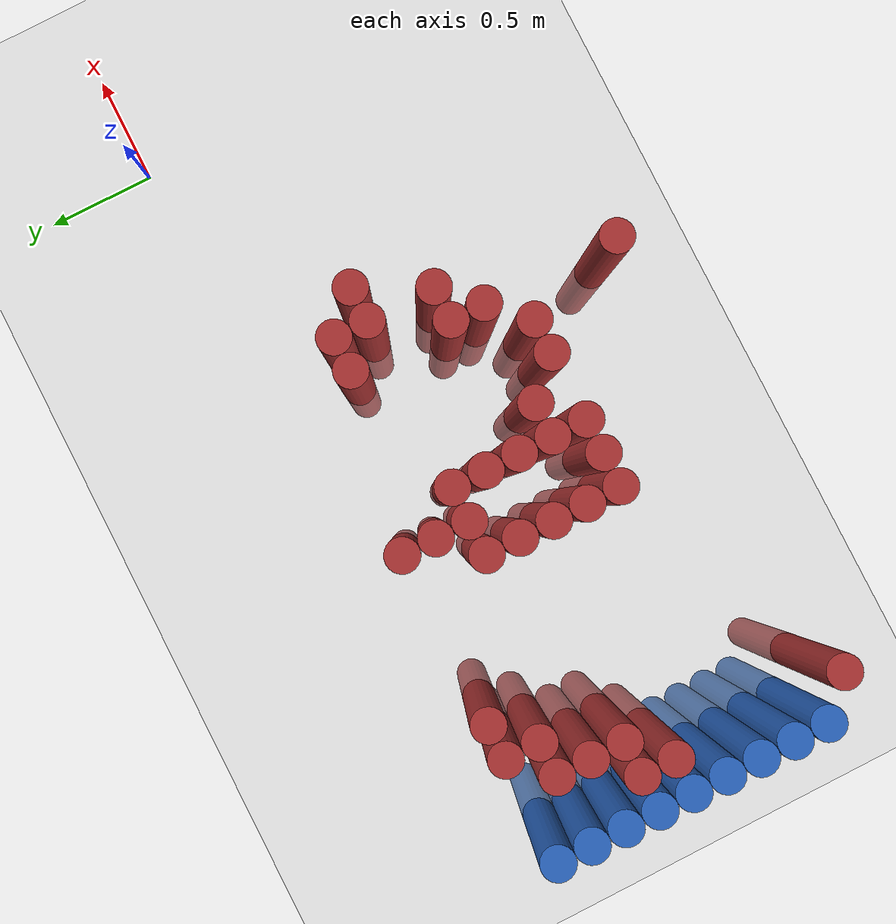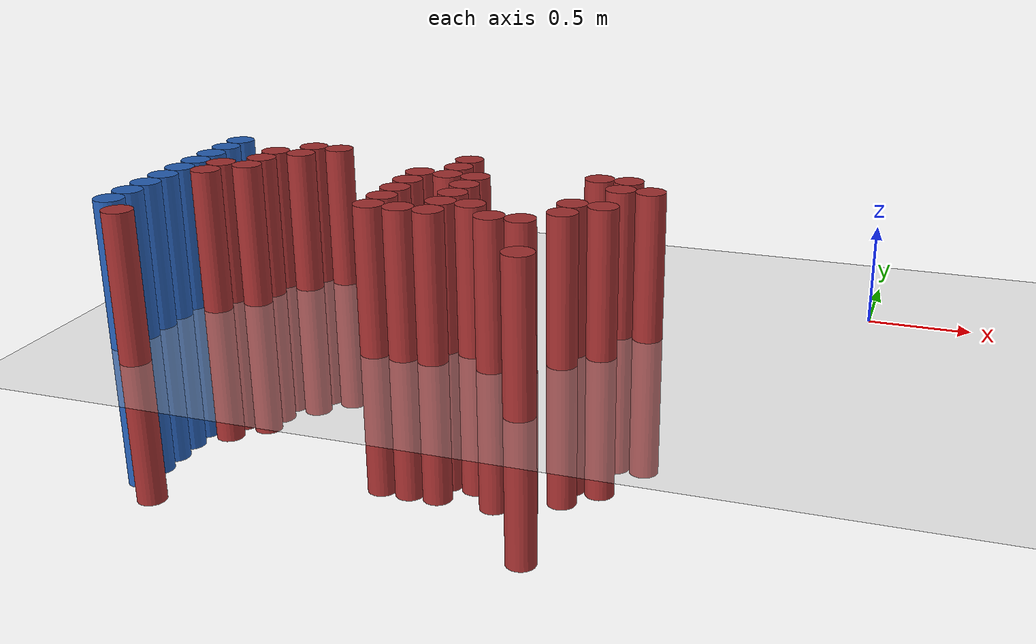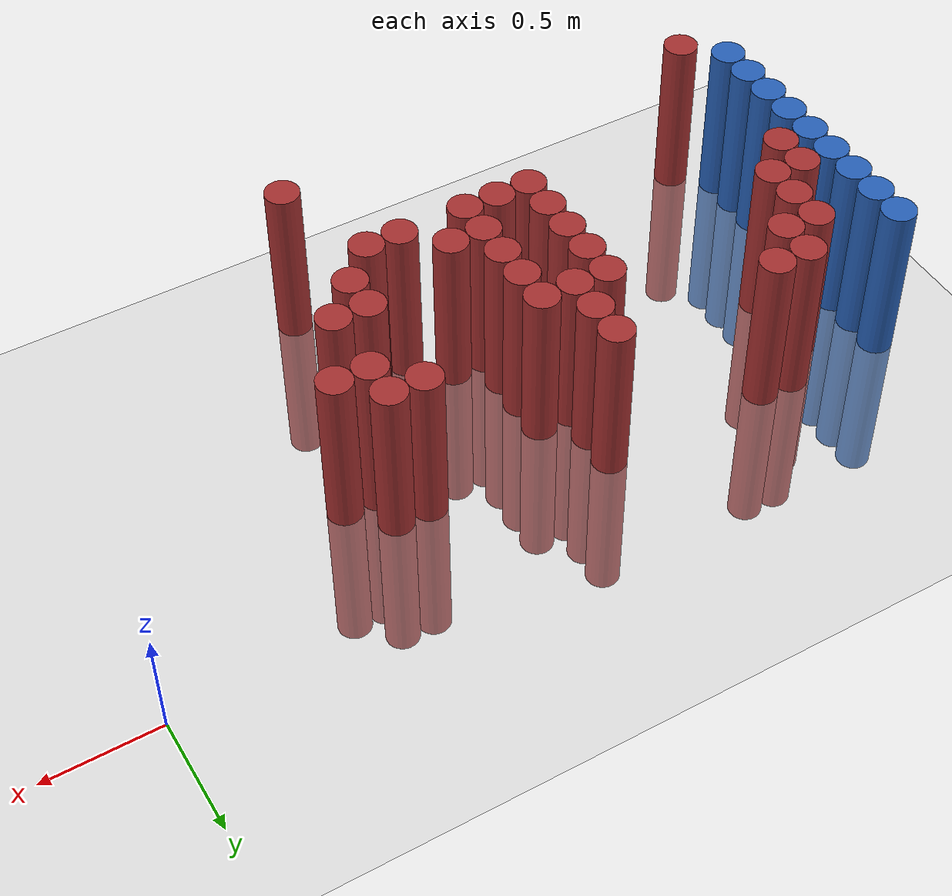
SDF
<sdf version="1.6">
 <world name="default">
  <model name="ground_plane">
   <static>1</static>
   <link name="link">
    <collision name="collision">
     <geometry><plane><normal>0 0 1</normal><size>100 100</size></plane></geometry>
     <surface><friction><ode><mu>100</mu><mu2>50</mu2></ode></friction></surface>
    </collision>
    <visual name="visual">
     <cast_shadows>0</cast_shadows>
     <geometry><plane><normal>0 0 1</normal><size>100 100</size></plane></geometry>
     <material>
      <script><uri>file://media/materials/scripts/gazebo.material</uri><name>Gazebo/Grey</name></script>
     </material>
    </visual>
   </link>
  </model>
  <model name="unit_cylinder_95">
   <static>1</static>
   <pose>-3.425000 -1.475000 0.000000 0.000000 0.000000 0.000000</pose>
   <link name="link">
    <inertial>
     <mass>1</mass>
     <inertia><ixx>0.145833</ixx><ixy>0</ixy><ixz>0</ixz><iyy>0.145833</iyy><iyz>0</iyz><izz>0.125</izz></inertia>
    </inertial>
    <collision name="collision">
     <geometry><cylinder><radius>0.075000</radius><length>1.5</length></cylinder></geometry>
    </collision>
    <visual name="visual">
     <geometry><cylinder><radius>0.075000</radius><length>1.5</length></cylinder></geometry>
     <material>
      <ambient>0.152000 0.379000 0.720000 1</ambient>
      <diffuse>0.152000 0.379000 0.720000 1</diffuse>
     </material>
     <material>
      <script><name>Gazebo/Grey</name><uri>file://media/materials/scripts/gazebo.material</uri></script>
     </material>
    </visual>
   </link>
  </model>
  <model name="unit_cylinder_97">
   <static>1</static>
   <pose>-3.425000 -1.325000 0.000000 0.000000 0.000000 0.000000</pose>
   <link name="link">
    <inertial>
     <mass>1</mass>
     <inertia><ixx>0.145833</ixx><ixy>0</ixy><ixz>0</ixz><iyy>0.145833</iyy><iyz>0</iyz><izz>0.125</izz></inertia>
    </inertial>
    <collision name="collision">
     <geometry><cylinder><radius>0.075000</radius><length>1.5</length></cylinder></geometry>
    </collision>
    <visual name="visual">
     <geometry><cylinder><radius>0.075000</radius><length>1.5</length></cylinder></geometry>
     <material>
      <ambient>0.152000 0.379000 0.720000 1</ambient>
      <diffuse>0.152000 0.379000 0.720000 1</diffuse>
     </material>
     <material>
      <script><name>Gazebo/Grey</name><uri>file://media/materials/scripts/gazebo.material</uri></script>
     </material>
    </visual>
   </link>
  </model>
  <model name="unit_cylinder_99">
   <static>1</static>
   <pose>-3.425000 -1.175000 0.000000 0.000000 0.000000 0.000000</pose>
   <link name="link">
    <inertial>
     <mass>1</mass>
     <inertia><ixx>0.145833</ixx><ixy>0</ixy><ixz>0</ixz><iyy>0.145833</iyy><iyz>0</iyz><izz>0.125</izz></inertia>
    </inertial>
    <collision name="collision">
     <geometry><cylinder><radius>0.075000</radius><length>1.5</length></cylinder></geometry>
    </collision>
    <visual name="visual">
     <geometry><cylinder><radius>0.075000</radius><length>1.5</length></cylinder></geometry>
     <material>
      <ambient>0.152000 0.379000 0.720000 1</ambient>
      <diffuse>0.152000 0.379000 0.720000 1</diffuse>
     </material>
     <material>
      <script><name>Gazebo/Grey</name><uri>file://media/materials/scripts/gazebo.material</uri></script>
     </material>
    </visual>
   </link>
  </model>
  <model name="unit_cylinder_101">
   <static>1</static>
   <pose>-3.425000 -1.025000 0.000000 0.000000 0.000000 0.000000</pose>
   <link name="link">
    <inertial>
     <mass>1</mass>
     <inertia><ixx>0.145833</ixx><ixy>0</ixy><ixz>0</ixz><iyy>0.145833</iyy><iyz>0</iyz><izz>0.125</izz></inertia>
    </inertial>
    <collision name="collision">
     <geometry><cylinder><radius>0.075000</radius><length>1.5</length></cylinder></geometry>
    </collision>
    <visual name="visual">
     <geometry><cylinder><radius>0.075000</radius><length>1.5</length></cylinder></geometry>
     <material>
      <ambient>0.152000 0.379000 0.720000 1</ambient>
      <diffuse>0.152000 0.379000 0.720000 1</diffuse>
     </material>
     <material>
      <script><name>Gazebo/Grey</name><uri>file://media/materials/scripts/gazebo.material</uri></script>
     </material>
    </visual>
   </link>
  </model>
  <model name="unit_cylinder_103">
   <static>1</static>
   <pose>-3.425000 -0.875000 0.000000 0.000000 0.000000 0.000000</pose>
   <link name="link">
    <inertial>
     <mass>1</mass>
     <inertia><ixx>0.145833</ixx><ixy>0</ixy><ixz>0</ixz><iyy>0.145833</iyy><iyz>0</iyz><izz>0.125</izz></inertia>
    </inertial>
    <collision name="collision">
     <geometry><cylinder><radius>0.075000</radius><length>1.5</length></cylinder></geometry>
    </collision>
    <visual name="visual">
     <geometry><cylinder><radius>0.075000</radius><length>1.5</length></cylinder></geometry>
     <material>
      <ambient>0.152000 0.379000 0.720000 1</ambient>
      <diffuse>0.152000 0.379000 0.720000 1</diffuse>
     </material>
     <material>
      <script><name>Gazebo/Grey</name><uri>file://media/materials/scripts/gazebo.material</uri></script>
     </material>
    </visual>
   </link>
  </model>
  <model name="unit_cylinder_105">
   <static>1</static>
   <pose>-3.425000 -0.725000 0.000000 0.000000 0.000000 0.000000</pose>
   <link name="link">
    <inertial>
     <mass>1</mass>
     <inertia><ixx>0.145833</ixx><ixy>0</ixy><ixz>0</ixz><iyy>0.145833</iyy><iyz>0</iyz><izz>0.125</izz></inertia>
    </inertial>
    <collision name="collision">
     <geometry><cylinder><radius>0.075000</radius><length>1.5</length></cylinder></geometry>
    </collision>
    <visual name="visual">
     <geometry><cylinder><radius>0.075000</radius><length>1.5</length></cylinder></geometry>
     <material>
      <ambient>0.152000 0.379000 0.720000 1</ambient>
      <diffuse>0.152000 0.379000 0.720000 1</diffuse>
     </material>
     <material>
      <script><name>Gazebo/Grey</name><uri>file://media/materials/scripts/gazebo.material</uri></script>
     </material>
    </visual>
   </link>
  </model>
  <model name="unit_cylinder_107">
   <static>1</static>
   <pose>-3.425000 -0.575000 0.000000 0.000000 0.000000 0.000000</pose>
   <link name="link">
    <inertial>
     <mass>1</mass>
     <inertia><ixx>0.145833</ixx><ixy>0</ixy><ixz>0</ixz><iyy>0.145833</iyy><iyz>0</iyz><izz>0.125</izz></inertia>
    </inertial>
    <collision name="collision">
     <geometry><cylinder><radius>0.075000</radius><length>1.5</length></cylinder></geometry>
    </collision>
    <visual name="visual">
     <geometry><cylinder><radius>0.075000</radius><length>1.5</length></cylinder></geometry>
     <material>
      <ambient>0.152000 0.379000 0.720000 1</ambient>
      <diffuse>0.152000 0.379000 0.720000 1</diffuse>
     </material>
     <material>
      <script><name>Gazebo/Grey</name><uri>file://media/materials/scripts/gazebo.material</uri></script>
     </material>
    </visual>
   </link>
  </model>
  <model name="unit_cylinder_109">
   <static>1</static>
   <pose>-3.425000 -0.425000 0.000000 0.000000 0.000000 0.000000</pose>
   <link name="link">
    <inertial>
     <mass>1</mass>
     <inertia><ixx>0.145833</ixx><ixy>0</ixy><ixz>0</ixz><iyy>0.145833</iyy><iyz>0</iyz><izz>0.125</izz></inertia>
    </inertial>
    <collision name="collision">
     <geometry><cylinder><radius>0.075000</radius><length>1.5</length></cylinder></geometry>
    </collision>
    <visual name="visual">
     <geometry><cylinder><radius>0.075000</radius><length>1.5</length></cylinder></geometry>
     <material>
      <ambient>0.152000 0.379000 0.720000 1</ambient>
      <diffuse>0.152000 0.379000 0.720000 1</diffuse>
     </material>
     <material>
      <script><name>Gazebo/Grey</name><uri>file://media/materials/scripts/gazebo.material</uri></script>
     </material>
    </visual>
   </link>
  </model>
  <model name="unit_cylinder_111">
   <static>1</static>
   <pose>-3.425000 -0.275000 0.000000 0.000000 0.000000 0.000000</pose>
   <link name="link">
    <inertial>
     <mass>1</mass>
     <inertia><ixx>0.145833</ixx><ixy>0</ixy><ixz>0</ixz><iyy>0.145833</iyy><iyz>0</iyz><izz>0.125</izz></inertia>
    </inertial>
    <collision name="collision">
     <geometry><cylinder><radius>0.075000</radius><length>1.5</length></cylinder></geometry>
    </collision>
    <visual name="visual">
     <geometry><cylinder><radius>0.075000</radius><length>1.5</length></cylinder></geometry>
     <material>
      <ambient>0.152000 0.379000 0.720000 1</ambient>
      <diffuse>0.152000 0.379000 0.720000 1</diffuse>
     </material>
     <material>
      <script><name>Gazebo/Grey</name><uri>file://media/materials/scripts/gazebo.material</uri></script>
     </material>
    </visual>
   </link>
  </model>
  <model name="unit_cylinder_211">
   <static>1</static>
   <pose>-3.425000 -1.475000 0.000000 0.000000 0.000000 0.000000</pose>
   <link name="link">
    <inertial>
     <mass>1</mass>
     <inertia><ixx>0.145833</ixx><ixy>0</ixy><ixz>0</ixz><iyy>0.145833</iyy><iyz>0</iyz><izz>0.125</izz></inertia>
    </inertial>
    <collision name="collision">
     <geometry><cylinder><radius>0.075000</radius><length>1.5</length></cylinder></geometry>
    </collision>
    <visual name="visual">
     <geometry><cylinder><radius>0.075000</radius><length>1.5</length></cylinder></geometry>
     <material>
      <ambient>0.152000 0.379000 0.720000 1</ambient>
      <diffuse>0.152000 0.379000 0.720000 1</diffuse>
     </material>
     <material>
      <script><name>Gazebo/Grey</name><uri>file://media/materials/scripts/gazebo.material</uri></script>
     </material>
    </visual>
   </link>
  </model>
  <model name="unit_cylinder_212">
   <static>1</static>
   <pose>-3.425000 -1.325000 0.000000 0.000000 0.000000 0.000000</pose>
   <link name="link">
    <inertial>
     <mass>1</mass>
     <inertia><ixx>0.145833</ixx><ixy>0</ixy><ixz>0</ixz><iyy>0.145833</iyy><iyz>0</iyz><izz>0.125</izz></inertia>
    </inertial>
    <collision name="collision">
     <geometry><cylinder><radius>0.075000</radius><length>1.5</length></cylinder></geometry>
    </collision>
    <visual name="visual">
     <geometry><cylinder><radius>0.075000</radius><length>1.5</length></cylinder></geometry>
     <material>
      <ambient>0.152000 0.379000 0.720000 1</ambient>
      <diffuse>0.152000 0.379000 0.720000 1</diffuse>
     </material>
     <material>
      <script><name>Gazebo/Grey</name><uri>file://media/materials/scripts/gazebo.material</uri></script>
     </material>
    </visual>
   </link>
  </model>
  <model name="unit_cylinder_213">
   <static>1</static>
   <pose>-3.425000 -1.175000 0.000000 0.000000 0.000000 0.000000</pose>
   <link name="link">
    <inertial>
     <mass>1</mass>
     <inertia><ixx>0.145833</ixx><ixy>0</ixy><ixz>0</ixz><iyy>0.145833</iyy><iyz>0</iyz><izz>0.125</izz></inertia>
    </inertial>
    <collision name="collision">
     <geometry><cylinder><radius>0.075000</radius><length>1.5</length></cylinder></geometry>
    </collision>
    <visual name="visual">
     <geometry><cylinder><radius>0.075000</radius><length>1.5</length></cylinder></geometry>
     <material>
      <ambient>0.152000 0.379000 0.720000 1</ambient>
      <diffuse>0.152000 0.379000 0.720000 1</diffuse>
     </material>
     <material>
      <script><name>Gazebo/Grey</name><uri>file://media/materials/scripts/gazebo.material</uri></script>
     </material>
    </visual>
   </link>
  </model>
  <model name="unit_cylinder_214">
   <static>1</static>
   <pose>-3.425000 -1.025000 0.000000 0.000000 0.000000 0.000000</pose>
   <link name="link">
    <inertial>
     <mass>1</mass>
     <inertia><ixx>0.145833</ixx><ixy>0</ixy><ixz>0</ixz><iyy>0.145833</iyy><iyz>0</iyz><izz>0.125</izz></inertia>
    </inertial>
    <collision name="collision">
     <geometry><cylinder><radius>0.075000</radius><length>1.5</length></cylinder></geometry>
    </collision>
    <visual name="visual">
     <geometry><cylinder><radius>0.075000</radius><length>1.5</length></cylinder></geometry>
     <material>
      <ambient>0.152000 0.379000 0.720000 1</ambient>
      <diffuse>0.152000 0.379000 0.720000 1</diffuse>
     </material>
     <material>
      <script><name>Gazebo/Grey</name><uri>file://media/materials/scripts/gazebo.material</uri></script>
     </material>
    </visual>
   </link>
  </model>
  <model name="unit_cylinder_215">
   <static>1</static>
   <pose>-3.425000 -0.875000 0.000000 0.000000 0.000000 0.000000</pose>
   <link name="link">
    <inertial>
     <mass>1</mass>
     <inertia><ixx>0.145833</ixx><ixy>0</ixy><ixz>0</ixz><iyy>0.145833</iyy><iyz>0</iyz><izz>0.125</izz></inertia>
    </inertial>
    <collision name="collision">
     <geometry><cylinder><radius>0.075000</radius><length>1.5</length></cylinder></geometry>
    </collision>
    <visual name="visual">
     <geometry><cylinder><radius>0.075000</radius><length>1.5</length></cylinder></geometry>
     <material>
      <ambient>0.152000 0.379000 0.720000 1</ambient>
      <diffuse>0.152000 0.379000 0.720000 1</diffuse>
     </material>
     <material>
      <script><name>Gazebo/Grey</name><uri>file://media/materials/scripts/gazebo.material</uri></script>
     </material>
    </visual>
   </link>
  </model>
  <model name="unit_cylinder_216">
   <static>1</static>
   <pose>-3.425000 -0.725000 0.000000 0.000000 0.000000 0.000000</pose>
   <link name="link">
    <inertial>
     <mass>1</mass>
     <inertia><ixx>0.145833</ixx><ixy>0</ixy><ixz>0</ixz><iyy>0.145833</iyy><iyz>0</iyz><izz>0.125</izz></inertia>
    </inertial>
    <collision name="collision">
     <geometry><cylinder><radius>0.075000</radius><length>1.5</length></cylinder></geometry>
    </collision>
    <visual name="visual">
     <geometry><cylinder><radius>0.075000</radius><length>1.5</length></cylinder></geometry>
     <material>
      <ambient>0.152000 0.379000 0.720000 1</ambient>
      <diffuse>0.152000 0.379000 0.720000 1</diffuse>
     </material>
     <material>
      <script><name>Gazebo/Grey</name><uri>file://media/materials/scripts/gazebo.material</uri></script>
     </material>
    </visual>
   </link>
  </model>
  <model name="unit_cylinder_217">
   <static>1</static>
   <pose>-3.425000 -0.575000 0.000000 0.000000 0.000000 0.000000</pose>
   <link name="link">
    <inertial>
     <mass>1</mass>
     <inertia><ixx>0.145833</ixx><ixy>0</ixy><ixz>0</ixz><iyy>0.145833</iyy><iyz>0</iyz><izz>0.125</izz></inertia>
    </inertial>
    <collision name="collision">
     <geometry><cylinder><radius>0.075000</radius><length>1.5</length></cylinder></geometry>
    </collision>
    <visual name="visual">
     <geometry><cylinder><radius>0.075000</radius><length>1.5</length></cylinder></geometry>
     <material>
      <ambient>0.152000 0.379000 0.720000 1</ambient>
      <diffuse>0.152000 0.379000 0.720000 1</diffuse>
     </material>
     <material>
      <script><name>Gazebo/Grey</name><uri>file://media/materials/scripts/gazebo.material</uri></script>
     </material>
    </visual>
   </link>
  </model>
  <model name="unit_cylinder_218">
   <static>1</static>
   <pose>-3.425000 -0.425000 0.000000 0.000000 0.000000 0.000000</pose>
   <link name="link">
    <inertial>
     <mass>1</mass>
     <inertia><ixx>0.145833</ixx><ixy>0</ixy><ixz>0</ixz><iyy>0.145833</iyy><iyz>0</iyz><izz>0.125</izz></inertia>
    </inertial>
    <collision name="collision">
     <geometry><cylinder><radius>0.075000</radius><length>1.5</length></cylinder></geometry>
    </collision>
    <visual name="visual">
     <geometry><cylinder><radius>0.075000</radius><length>1.5</length></cylinder></geometry>
     <material>
      <ambient>0.152000 0.379000 0.720000 1</ambient>
      <diffuse>0.152000 0.379000 0.720000 1</diffuse>
     </material>
     <material>
      <script><name>Gazebo/Grey</name><uri>file://media/materials/scripts/gazebo.material</uri></script>
     </material>
    </visual>
   </link>
  </model>
  <model name="unit_cylinder_219">
   <static>1</static>
   <pose>-3.425000 -0.275000 0.000000 0.000000 0.000000 0.000000</pose>
   <link name="link">
    <inertial>
     <mass>1</mass>
     <inertia><ixx>0.145833</ixx><ixy>0</ixy><ixz>0</ixz><iyy>0.145833</iyy><iyz>0</iyz><izz>0.125</izz></inertia>
    </inertial>
    <collision name="collision">
     <geometry><cylinder><radius>0.075000</radius><length>1.5</length></cylinder></geometry>
    </collision>
    <visual name="visual">
     <geometry><cylinder><radius>0.075000</radius><length>1.5</length></cylinder></geometry>
     <material>
      <ambient>0.152000 0.379000 0.720000 1</ambient>
      <diffuse>0.152000 0.379000 0.720000 1</diffuse>
     </material>
     <material>
      <script><name>Gazebo/Grey</name><uri>file://media/materials/scripts/gazebo.material</uri></script>
     </material>
    </visual>
   </link>
  </model>
  <model name="unit_cylinder_259">
   <static>1</static>
   <pose>-3.275000 -1.625000 0.000000 0.000000 0.000000 0.000000</pose>
   <link name="link">
    <inertial>
     <mass>1</mass>
     <inertia><ixx>0.145833</ixx><ixy>0</ixy><ixz>0</ixz><iyy>0.145833</iyy><iyz>0</iyz><izz>0.125</izz></inertia>
    </inertial>
    <collision name="collision">
     <geometry><cylinder><radius>0.075000</radius><length>1.5</length></cylinder></geometry>
    </collision>
    <visual name="visual">
     <geometry><cylinder><radius>0.075000</radius><length>1.5</length></cylinder></geometry>
     <material>
      <ambient>0.648000 0.192000 0.192000 1</ambient>
      <diffuse>0.648000 0.192000 0.192000 1</diffuse>
     </material>
     <material>
      <script><name>Gazebo/Grey</name><uri>file://media/materials/scripts/gazebo.material</uri></script>
     </material>
    </visual>
   </link>
  </model>
  <model name="unit_cylinder_260">
   <static>1</static>
   <pose>-3.275000 -0.875000 0.000000 0.000000 0.000000 0.000000</pose>
   <link name="link">
    <inertial>
     <mass>1</mass>
     <inertia><ixx>0.145833</ixx><ixy>0</ixy><ixz>0</ixz><iyy>0.145833</iyy><iyz>0</iyz><izz>0.125</izz></inertia>
    </inertial>
    <collision name="collision">
     <geometry><cylinder><radius>0.075000</radius><length>1.5</length></cylinder></geometry>
    </collision>
    <visual name="visual">
     <geometry><cylinder><radius>0.075000</radius><length>1.5</length></cylinder></geometry>
     <material>
      <ambient>0.648000 0.192000 0.192000 1</ambient>
      <diffuse>0.648000 0.192000 0.192000 1</diffuse>
     </material>
     <material>
      <script><name>Gazebo/Grey</name><uri>file://media/materials/scripts/gazebo.material</uri></script>
     </material>
    </visual>
   </link>
  </model>
  <model name="unit_cylinder_261">
   <static>1</static>
   <pose>-3.275000 -0.725000 0.000000 0.000000 0.000000 0.000000</pose>
   <link name="link">
    <inertial>
     <mass>1</mass>
     <inertia><ixx>0.145833</ixx><ixy>0</ixy><ixz>0</ixz><iyy>0.145833</iyy><iyz>0</iyz><izz>0.125</izz></inertia>
    </inertial>
    <collision name="collision">
     <geometry><cylinder><radius>0.075000</radius><length>1.5</length></cylinder></geometry>
    </collision>
    <visual name="visual">
     <geometry><cylinder><radius>0.075000</radius><length>1.5</length></cylinder></geometry>
     <material>
      <ambient>0.648000 0.192000 0.192000 1</ambient>
      <diffuse>0.648000 0.192000 0.192000 1</diffuse>
     </material>
     <material>
      <script><name>Gazebo/Grey</name><uri>file://media/materials/scripts/gazebo.material</uri></script>
     </material>
    </visual>
   </link>
  </model>
  <model name="unit_cylinder_281">
   <static>1</static>
   <pose>-3.125000 -0.725000 0.000000 0.000000 0.000000 0.000000</pose>
   <link name="link">
    <inertial>
     <mass>1</mass>
     <inertia><ixx>0.145833</ixx><ixy>0</ixy><ixz>0</ixz><iyy>0.145833</iyy><iyz>0</iyz><izz>0.125</izz></inertia>
    </inertial>
    <collision name="collision">
     <geometry><cylinder><radius>0.075000</radius><length>1.5</length></cylinder></geometry>
    </collision>
    <visual name="visual">
     <geometry><cylinder><radius>0.075000</radius><length>1.5</length></cylinder></geometry>
     <material>
      <ambient>0.648000 0.192000 0.192000 1</ambient>
      <diffuse>0.648000 0.192000 0.192000 1</diffuse>
     </material>
     <material>
      <script><name>Gazebo/Grey</name><uri>file://media/materials/scripts/gazebo.material</uri></script>
     </material>
    </visual>
   </link>
  </model>
  <model name="unit_cylinder_282">
   <static>1</static>
   <pose>-3.125000 -0.575000 0.000000 0.000000 0.000000 0.000000</pose>
   <link name="link">
    <inertial>
     <mass>1</mass>
     <inertia><ixx>0.145833</ixx><ixy>0</ixy><ixz>0</ixz><iyy>0.145833</iyy><iyz>0</iyz><izz>0.125</izz></inertia>
    </inertial>
    <collision name="collision">
     <geometry><cylinder><radius>0.075000</radius><length>1.5</length></cylinder></geometry>
    </collision>
    <visual name="visual">
     <geometry><cylinder><radius>0.075000</radius><length>1.5</length></cylinder></geometry>
     <material>
      <ambient>0.648000 0.192000 0.192000 1</ambient>
      <diffuse>0.648000 0.192000 0.192000 1</diffuse>
     </material>
     <material>
      <script><name>Gazebo/Grey</name><uri>file://media/materials/scripts/gazebo.material</uri></script>
     </material>
    </visual>
   </link>
  </model>
  <model name="unit_cylinder_283">
   <static>1</static>
   <pose>-3.125000 -0.425000 0.000000 0.000000 0.000000 0.000000</pose>
   <link name="link">
    <inertial>
     <mass>1</mass>
     <inertia><ixx>0.145833</ixx><ixy>0</ixy><ixz>0</ixz><iyy>0.145833</iyy><iyz>0</iyz><izz>0.125</izz></inertia>
    </inertial>
    <collision name="collision">
     <geometry><cylinder><radius>0.075000</radius><length>1.5</length></cylinder></geometry>
    </collision>
    <visual name="visual">
     <geometry><cylinder><radius>0.075000</radius><length>1.5</length></cylinder></geometry>
     <material>
      <ambient>0.648000 0.192000 0.192000 1</ambient>
      <diffuse>0.648000 0.192000 0.192000 1</diffuse>
     </material>
     <material>
      <script><name>Gazebo/Grey</name><uri>file://media/materials/scripts/gazebo.material</uri></script>
     </material>
    </visual>
   </link>
  </model>
  <model name="unit_cylinder_293">
   <static>1</static>
   <pose>-2.975000 -0.425000 0.000000 0.000000 0.000000 0.000000</pose>
   <link name="link">
    <inertial>
     <mass>1</mass>
     <inertia><ixx>0.145833</ixx><ixy>0</ixy><ixz>0</ixz><iyy>0.145833</iyy><iyz>0</iyz><izz>0.125</izz></inertia>
    </inertial>
    <collision name="collision">
     <geometry><cylinder><radius>0.075000</radius><length>1.5</length></cylinder></geometry>
    </collision>
    <visual name="visual">
     <geometry><cylinder><radius>0.075000</radius><length>1.5</length></cylinder></geometry>
     <material>
      <ambient>0.648000 0.192000 0.192000 1</ambient>
      <diffuse>0.648000 0.192000 0.192000 1</diffuse>
     </material>
     <material>
      <script><name>Gazebo/Grey</name><uri>file://media/materials/scripts/gazebo.material</uri></script>
     </material>
    </visual>
   </link>
  </model>
  <model name="unit_cylinder_294">
   <static>1</static>
   <pose>-2.975000 -0.275000 0.000000 0.000000 0.000000 0.000000</pose>
   <link name="link">
    <inertial>
     <mass>1</mass>
     <inertia><ixx>0.145833</ixx><ixy>0</ixy><ixz>0</ixz><iyy>0.145833</iyy><iyz>0</iyz><izz>0.125</izz></inertia>
    </inertial>
    <collision name="collision">
     <geometry><cylinder><radius>0.075000</radius><length>1.5</length></cylinder></geometry>
    </collision>
    <visual name="visual">
     <geometry><cylinder><radius>0.075000</radius><length>1.5</length></cylinder></geometry>
     <material>
      <ambient>0.648000 0.192000 0.192000 1</ambient>
      <diffuse>0.648000 0.192000 0.192000 1</diffuse>
     </material>
     <material>
      <script><name>Gazebo/Grey</name><uri>file://media/materials/scripts/gazebo.material</uri></script>
     </material>
    </visual>
   </link>
  </model>
  <model name="unit_cylinder_304">
   <static>1</static>
   <pose>-2.825000 -0.275000 0.000000 0.000000 0.000000 0.000000</pose>
   <link name="link">
    <inertial>
     <mass>1</mass>
     <inertia><ixx>0.145833</ixx><ixy>0</ixy><ixz>0</ixz><iyy>0.145833</iyy><iyz>0</iyz><izz>0.125</izz></inertia>
    </inertial>
    <collision name="collision">
     <geometry><cylinder><radius>0.075000</radius><length>1.5</length></cylinder></geometry>
    </collision>
    <visual name="visual">
     <geometry><cylinder><radius>0.075000</radius><length>1.5</length></cylinder></geometry>
     <material>
      <ambient>0.648000 0.192000 0.192000 1</ambient>
      <diffuse>0.648000 0.192000 0.192000 1</diffuse>
     </material>
     <material>
      <script><name>Gazebo/Grey</name><uri>file://media/materials/scripts/gazebo.material</uri></script>
     </material>
    </visual>
   </link>
  </model>
  <model name="unit_cylinder_315">
   <static>1</static>
   <pose>-2.225000 -1.175000 0.000000 0.000000 0.000000 0.000000</pose>
   <link name="link">
    <inertial>
     <mass>1</mass>
     <inertia><ixx>0.145833</ixx><ixy>0</ixy><ixz>0</ixz><iyy>0.145833</iyy><iyz>0</iyz><izz>0.125</izz></inertia>
    </inertial>
    <collision name="collision">
     <geometry><cylinder><radius>0.075000</radius><length>1.5</length></cylinder></geometry>
    </collision>
    <visual name="visual">
     <geometry><cylinder><radius>0.075000</radius><length>1.5</length></cylinder></geometry>
     <material>
      <ambient>0.648000 0.192000 0.192000 1</ambient>
      <diffuse>0.648000 0.192000 0.192000 1</diffuse>
     </material>
     <material>
      <script><name>Gazebo/Grey</name><uri>file://media/materials/scripts/gazebo.material</uri></script>
     </material>
    </visual>
   </link>
  </model>
  <model name="unit_cylinder_316">
   <static>1</static>
   <pose>-2.225000 -1.025000 0.000000 0.000000 0.000000 0.000000</pose>
   <link name="link">
    <inertial>
     <mass>1</mass>
     <inertia><ixx>0.145833</ixx><ixy>0</ixy><ixz>0</ixz><iyy>0.145833</iyy><iyz>0</iyz><izz>0.125</izz></inertia>
    </inertial>
    <collision name="collision">
     <geometry><cylinder><radius>0.075000</radius><length>1.5</length></cylinder></geometry>
    </collision>
    <visual name="visual">
     <geometry><cylinder><radius>0.075000</radius><length>1.5</length></cylinder></geometry>
     <material>
      <ambient>0.648000 0.192000 0.192000 1</ambient>
      <diffuse>0.648000 0.192000 0.192000 1</diffuse>
     </material>
     <material>
      <script><name>Gazebo/Grey</name><uri>file://media/materials/scripts/gazebo.material</uri></script>
     </material>
    </visual>
   </link>
  </model>
  <model name="unit_cylinder_317">
   <static>1</static>
   <pose>-2.225000 -0.875000 0.000000 0.000000 0.000000 0.000000</pose>
   <link name="link">
    <inertial>
     <mass>1</mass>
     <inertia><ixx>0.145833</ixx><ixy>0</ixy><ixz>0</ixz><iyy>0.145833</iyy><iyz>0</iyz><izz>0.125</izz></inertia>
    </inertial>
    <collision name="collision">
     <geometry><cylinder><radius>0.075000</radius><length>1.5</length></cylinder></geometry>
    </collision>
    <visual name="visual">
     <geometry><cylinder><radius>0.075000</radius><length>1.5</length></cylinder></geometry>
     <material>
      <ambient>0.648000 0.192000 0.192000 1</ambient>
      <diffuse>0.648000 0.192000 0.192000 1</diffuse>
     </material>
     <material>
      <script><name>Gazebo/Grey</name><uri>file://media/materials/scripts/gazebo.material</uri></script>
     </material>
    </visual>
   </link>
  </model>
  <model name="unit_cylinder_318">
   <static>1</static>
   <pose>-2.225000 -0.725000 0.000000 0.000000 0.000000 0.000000</pose>
   <link name="link">
    <inertial>
     <mass>1</mass>
     <inertia><ixx>0.145833</ixx><ixy>0</ixy><ixz>0</ixz><iyy>0.145833</iyy><iyz>0</iyz><izz>0.125</izz></inertia>
    </inertial>
    <collision name="collision">
     <geometry><cylinder><radius>0.075000</radius><length>1.5</length></cylinder></geometry>
    </collision>
    <visual name="visual">
     <geometry><cylinder><radius>0.075000</radius><length>1.5</length></cylinder></geometry>
     <material>
      <ambient>0.648000 0.192000 0.192000 1</ambient>
      <diffuse>0.648000 0.192000 0.192000 1</diffuse>
     </material>
     <material>
      <script><name>Gazebo/Grey</name><uri>file://media/materials/scripts/gazebo.material</uri></script>
     </material>
    </visual>
   </link>
  </model>
  <model name="unit_cylinder_319">
   <static>1</static>
   <pose>-2.225000 -0.575000 0.000000 0.000000 0.000000 0.000000</pose>
   <link name="link">
    <inertial>
     <mass>1</mass>
     <inertia><ixx>0.145833</ixx><ixy>0</ixy><ixz>0</ixz><iyy>0.145833</iyy><iyz>0</iyz><izz>0.125</izz></inertia>
    </inertial>
    <collision name="collision">
     <geometry><cylinder><radius>0.075000</radius><length>1.5</length></cylinder></geometry>
    </collision>
    <visual name="visual">
     <geometry><cylinder><radius>0.075000</radius><length>1.5</length></cylinder></geometry>
     <material>
      <ambient>0.648000 0.192000 0.192000 1</ambient>
      <diffuse>0.648000 0.192000 0.192000 1</diffuse>
     </material>
     <material>
      <script><name>Gazebo/Grey</name><uri>file://media/materials/scripts/gazebo.material</uri></script>
     </material>
    </visual>
   </link>
  </model>
  <model name="unit_cylinder_329">
   <static>1</static>
   <pose>-2.075000 -1.175000 0.000000 0.000000 0.000000 0.000000</pose>
   <link name="link">
    <inertial>
     <mass>1</mass>
     <inertia><ixx>0.145833</ixx><ixy>0</ixy><ixz>0</ixz><iyy>0.145833</iyy><iyz>0</iyz><izz>0.125</izz></inertia>
    </inertial>
    <collision name="collision">
     <geometry><cylinder><radius>0.075000</radius><length>1.5</length></cylinder></geometry>
    </collision>
    <visual name="visual">
     <geometry><cylinder><radius>0.075000</radius><length>1.5</length></cylinder></geometry>
     <material>
      <ambient>0.648000 0.192000 0.192000 1</ambient>
      <diffuse>0.648000 0.192000 0.192000 1</diffuse>
     </material>
     <material>
      <script><name>Gazebo/Grey</name><uri>file://media/materials/scripts/gazebo.material</uri></script>
     </material>
    </visual>
   </link>
  </model>
  <model name="unit_cylinder_330">
   <static>1</static>
   <pose>-2.075000 -0.575000 0.000000 0.000000 0.000000 0.000000</pose>
   <link name="link">
    <inertial>
     <mass>1</mass>
     <inertia><ixx>0.145833</ixx><ixy>0</ixy><ixz>0</ixz><iyy>0.145833</iyy><iyz>0</iyz><izz>0.125</izz></inertia>
    </inertial>
    <collision name="collision">
     <geometry><cylinder><radius>0.075000</radius><length>1.5</length></cylinder></geometry>
    </collision>
    <visual name="visual">
     <geometry><cylinder><radius>0.075000</radius><length>1.5</length></cylinder></geometry>
     <material>
      <ambient>0.648000 0.192000 0.192000 1</ambient>
      <diffuse>0.648000 0.192000 0.192000 1</diffuse>
     </material>
     <material>
      <script><name>Gazebo/Grey</name><uri>file://media/materials/scripts/gazebo.material</uri></script>
     </material>
    </visual>
   </link>
  </model>
  <model name="unit_cylinder_331">
   <static>1</static>
   <pose>-2.075000 -0.425000 0.000000 0.000000 0.000000 0.000000</pose>
   <link name="link">
    <inertial>
     <mass>1</mass>
     <inertia><ixx>0.145833</ixx><ixy>0</ixy><ixz>0</ixz><iyy>0.145833</iyy><iyz>0</iyz><izz>0.125</izz></inertia>
    </inertial>
    <collision name="collision">
     <geometry><cylinder><radius>0.075000</radius><length>1.5</length></cylinder></geometry>
    </collision>
    <visual name="visual">
     <geometry><cylinder><radius>0.075000</radius><length>1.5</length></cylinder></geometry>
     <material>
      <ambient>0.648000 0.192000 0.192000 1</ambient>
      <diffuse>0.648000 0.192000 0.192000 1</diffuse>
     </material>
     <material>
      <script><name>Gazebo/Grey</name><uri>file://media/materials/scripts/gazebo.material</uri></script>
     </material>
    </visual>
   </link>
  </model>
  <model name="unit_cylinder_332">
   <static>1</static>
   <pose>-2.075000 -0.275000 0.000000 0.000000 0.000000 0.000000</pose>
   <link name="link">
    <inertial>
     <mass>1</mass>
     <inertia><ixx>0.145833</ixx><ixy>0</ixy><ixz>0</ixz><iyy>0.145833</iyy><iyz>0</iyz><izz>0.125</izz></inertia>
    </inertial>
    <collision name="collision">
     <geometry><cylinder><radius>0.075000</radius><length>1.5</length></cylinder></geometry>
    </collision>
    <visual name="visual">
     <geometry><cylinder><radius>0.075000</radius><length>1.5</length></cylinder></geometry>
     <material>
      <ambient>0.648000 0.192000 0.192000 1</ambient>
      <diffuse>0.648000 0.192000 0.192000 1</diffuse>
     </material>
     <material>
      <script><name>Gazebo/Grey</name><uri>file://media/materials/scripts/gazebo.material</uri></script>
     </material>
    </visual>
   </link>
  </model>
  <model name="unit_cylinder_343">
   <static>1</static>
   <pose>-1.925000 -1.175000 0.000000 0.000000 0.000000 0.000000</pose>
   <link name="link">
    <inertial>
     <mass>1</mass>
     <inertia><ixx>0.145833</ixx><ixy>0</ixy><ixz>0</ixz><iyy>0.145833</iyy><iyz>0</iyz><izz>0.125</izz></inertia>
    </inertial>
    <collision name="collision">
     <geometry><cylinder><radius>0.075000</radius><length>1.5</length></cylinder></geometry>
    </collision>
    <visual name="visual">
     <geometry><cylinder><radius>0.075000</radius><length>1.5</length></cylinder></geometry>
     <material>
      <ambient>0.648000 0.192000 0.192000 1</ambient>
      <diffuse>0.648000 0.192000 0.192000 1</diffuse>
     </material>
     <material>
      <script><name>Gazebo/Grey</name><uri>file://media/materials/scripts/gazebo.material</uri></script>
     </material>
    </visual>
   </link>
  </model>
  <model name="unit_cylinder_344">
   <static>1</static>
   <pose>-1.925000 -1.025000 0.000000 0.000000 0.000000 0.000000</pose>
   <link name="link">
    <inertial>
     <mass>1</mass>
     <inertia><ixx>0.145833</ixx><ixy>0</ixy><ixz>0</ixz><iyy>0.145833</iyy><iyz>0</iyz><izz>0.125</izz></inertia>
    </inertial>
    <collision name="collision">
     <geometry><cylinder><radius>0.075000</radius><length>1.5</length></cylinder></geometry>
    </collision>
    <visual name="visual">
     <geometry><cylinder><radius>0.075000</radius><length>1.5</length></cylinder></geometry>
     <material>
      <ambient>0.648000 0.192000 0.192000 1</ambient>
      <diffuse>0.648000 0.192000 0.192000 1</diffuse>
     </material>
     <material>
      <script><name>Gazebo/Grey</name><uri>file://media/materials/scripts/gazebo.material</uri></script>
     </material>
    </visual>
   </link>
  </model>
  <model name="unit_cylinder_345">
   <static>1</static>
   <pose>-1.925000 -0.875000 0.000000 0.000000 0.000000 0.000000</pose>
   <link name="link">
    <inertial>
     <mass>1</mass>
     <inertia><ixx>0.145833</ixx><ixy>0</ixy><ixz>0</ixz><iyy>0.145833</iyy><iyz>0</iyz><izz>0.125</izz></inertia>
    </inertial>
    <collision name="collision">
     <geometry><cylinder><radius>0.075000</radius><length>1.5</length></cylinder></geometry>
    </collision>
    <visual name="visual">
     <geometry><cylinder><radius>0.075000</radius><length>1.5</length></cylinder></geometry>
     <material>
      <ambient>0.648000 0.192000 0.192000 1</ambient>
      <diffuse>0.648000 0.192000 0.192000 1</diffuse>
     </material>
     <material>
      <script><name>Gazebo/Grey</name><uri>file://media/materials/scripts/gazebo.material</uri></script>
     </material>
    </visual>
   </link>
  </model>
  <model name="unit_cylinder_346">
   <static>1</static>
   <pose>-1.925000 -0.725000 0.000000 0.000000 0.000000 0.000000</pose>
   <link name="link">
    <inertial>
     <mass>1</mass>
     <inertia><ixx>0.145833</ixx><ixy>0</ixy><ixz>0</ixz><iyy>0.145833</iyy><iyz>0</iyz><izz>0.125</izz></inertia>
    </inertial>
    <collision name="collision">
     <geometry><cylinder><radius>0.075000</radius><length>1.5</length></cylinder></geometry>
    </collision>
    <visual name="visual">
     <geometry><cylinder><radius>0.075000</radius><length>1.5</length></cylinder></geometry>
     <material>
      <ambient>0.648000 0.192000 0.192000 1</ambient>
      <diffuse>0.648000 0.192000 0.192000 1</diffuse>
     </material>
     <material>
      <script><name>Gazebo/Grey</name><uri>file://media/materials/scripts/gazebo.material</uri></script>
     </material>
    </visual>
   </link>
  </model>
  <model name="unit_cylinder_347">
   <static>1</static>
   <pose>-1.925000 -0.575000 0.000000 0.000000 0.000000 0.000000</pose>
   <link name="link">
    <inertial>
     <mass>1</mass>
     <inertia><ixx>0.145833</ixx><ixy>0</ixy><ixz>0</ixz><iyy>0.145833</iyy><iyz>0</iyz><izz>0.125</izz></inertia>
    </inertial>
    <collision name="collision">
     <geometry><cylinder><radius>0.075000</radius><length>1.5</length></cylinder></geometry>
    </collision>
    <visual name="visual">
     <geometry><cylinder><radius>0.075000</radius><length>1.5</length></cylinder></geometry>
     <material>
      <ambient>0.648000 0.192000 0.192000 1</ambient>
      <diffuse>0.648000 0.192000 0.192000 1</diffuse>
     </material>
     <material>
      <script><name>Gazebo/Grey</name><uri>file://media/materials/scripts/gazebo.material</uri></script>
     </material>
    </visual>
   </link>
  </model>
  <model name="unit_cylinder_358">
   <static>1</static>
   <pose>-1.775000 -1.025000 0.000000 0.000000 0.000000 0.000000</pose>
   <link name="link">
    <inertial>
     <mass>1</mass>
     <inertia><ixx>0.145833</ixx><ixy>0</ixy><ixz>0</ixz><iyy>0.145833</iyy><iyz>0</iyz><izz>0.125</izz></inertia>
    </inertial>
    <collision name="collision">
     <geometry><cylinder><radius>0.075000</radius><length>1.5</length></cylinder></geometry>
    </collision>
    <visual name="visual">
     <geometry><cylinder><radius>0.075000</radius><length>1.5</length></cylinder></geometry>
     <material>
      <ambient>0.648000 0.192000 0.192000 1</ambient>
      <diffuse>0.648000 0.192000 0.192000 1</diffuse>
     </material>
     <material>
      <script><name>Gazebo/Grey</name><uri>file://media/materials/scripts/gazebo.material</uri></script>
     </material>
    </visual>
   </link>
  </model>
  <model name="unit_cylinder_368">
   <static>1</static>
   <pose>-1.625000 -1.175000 0.000000 0.000000 0.000000 0.000000</pose>
   <link name="link">
    <inertial>
     <mass>1</mass>
     <inertia><ixx>0.145833</ixx><ixy>0</ixy><ixz>0</ixz><iyy>0.145833</iyy><iyz>0</iyz><izz>0.125</izz></inertia>
    </inertial>
    <collision name="collision">
     <geometry><cylinder><radius>0.075000</radius><length>1.5</length></cylinder></geometry>
    </collision>
    <visual name="visual">
     <geometry><cylinder><radius>0.075000</radius><length>1.5</length></cylinder></geometry>
     <material>
      <ambient>0.648000 0.192000 0.192000 1</ambient>
      <diffuse>0.648000 0.192000 0.192000 1</diffuse>
     </material>
     <material>
      <script><name>Gazebo/Grey</name><uri>file://media/materials/scripts/gazebo.material</uri></script>
     </material>
    </visual>
   </link>
  </model>
  <model name="unit_cylinder_378">
   <static>1</static>
   <pose>-1.475000 -1.175000 0.000000 0.000000 0.000000 0.000000</pose>
   <link name="link">
    <inertial>
     <mass>1</mass>
     <inertia><ixx>0.145833</ixx><ixy>0</ixy><ixz>0</ixz><iyy>0.145833</iyy><iyz>0</iyz><izz>0.125</izz></inertia>
    </inertial>
    <collision name="collision">
     <geometry><cylinder><radius>0.075000</radius><length>1.5</length></cylinder></geometry>
    </collision>
    <visual name="visual">
     <geometry><cylinder><radius>0.075000</radius><length>1.5</length></cylinder></geometry>
     <material>
      <ambient>0.648000 0.192000 0.192000 1</ambient>
      <diffuse>0.648000 0.192000 0.192000 1</diffuse>
     </material>
     <material>
      <script><name>Gazebo/Grey</name><uri>file://media/materials/scripts/gazebo.material</uri></script>
     </material>
    </visual>
   </link>
  </model>
  <model name="unit_cylinder_387">
   <static>1</static>
   <pose>-1.325000 -1.625000 0.000000 0.000000 0.000000 0.000000</pose>
   <link name="link">
    <inertial>
     <mass>1</mass>
     <inertia><ixx>0.145833</ixx><ixy>0</ixy><ixz>0</ixz><iyy>0.145833</iyy><iyz>0</iyz><izz>0.125</izz></inertia>
    </inertial>
    <collision name="collision">
     <geometry><cylinder><radius>0.075000</radius><length>1.5</length></cylinder></geometry>
    </collision>
    <visual name="visual">
     <geometry><cylinder><radius>0.075000</radius><length>1.5</length></cylinder></geometry>
     <material>
      <ambient>0.648000 0.192000 0.192000 1</ambient>
      <diffuse>0.648000 0.192000 0.192000 1</diffuse>
     </material>
     <material>
      <script><name>Gazebo/Grey</name><uri>file://media/materials/scripts/gazebo.material</uri></script>
     </material>
    </visual>
   </link>
  </model>
  <model name="unit_cylinder_388">
   <static>1</static>
   <pose>-1.325000 -1.025000 0.000000 0.000000 0.000000 0.000000</pose>
   <link name="link">
    <inertial>
     <mass>1</mass>
     <inertia><ixx>0.145833</ixx><ixy>0</ixy><ixz>0</ixz><iyy>0.145833</iyy><iyz>0</iyz><izz>0.125</izz></inertia>
    </inertial>
    <collision name="collision">
     <geometry><cylinder><radius>0.075000</radius><length>1.5</length></cylinder></geometry>
    </collision>
    <visual name="visual">
     <geometry><cylinder><radius>0.075000</radius><length>1.5</length></cylinder></geometry>
     <material>
      <ambient>0.648000 0.192000 0.192000 1</ambient>
      <diffuse>0.648000 0.192000 0.192000 1</diffuse>
     </material>
     <material>
      <script><name>Gazebo/Grey</name><uri>file://media/materials/scripts/gazebo.material</uri></script>
     </material>
    </visual>
   </link>
  </model>
  <model name="unit_cylinder_389">
   <static>1</static>
   <pose>-1.325000 -0.875000 0.000000 0.000000 0.000000 0.000000</pose>
   <link name="link">
    <inertial>
     <mass>1</mass>
     <inertia><ixx>0.145833</ixx><ixy>0</ixy><ixz>0</ixz><iyy>0.145833</iyy><iyz>0</iyz><izz>0.125</izz></inertia>
    </inertial>
    <collision name="collision">
     <geometry><cylinder><radius>0.075000</radius><length>1.5</length></cylinder></geometry>
    </collision>
    <visual name="visual">
     <geometry><cylinder><radius>0.075000</radius><length>1.5</length></cylinder></geometry>
     <material>
      <ambient>0.648000 0.192000 0.192000 1</ambient>
      <diffuse>0.648000 0.192000 0.192000 1</diffuse>
     </material>
     <material>
      <script><name>Gazebo/Grey</name><uri>file://media/materials/scripts/gazebo.material</uri></script>
     </material>
    </visual>
   </link>
  </model>
  <model name="unit_cylinder_390">
   <static>1</static>
   <pose>-1.325000 -0.425000 0.000000 0.000000 0.000000 0.000000</pose>
   <link name="link">
    <inertial>
     <mass>1</mass>
     <inertia><ixx>0.145833</ixx><ixy>0</ixy><ixz>0</ixz><iyy>0.145833</iyy><iyz>0</iyz><izz>0.125</izz></inertia>
    </inertial>
    <collision name="collision">
     <geometry><cylinder><radius>0.075000</radius><length>1.5</length></cylinder></geometry>
    </collision>
    <visual name="visual">
     <geometry><cylinder><radius>0.075000</radius><length>1.5</length></cylinder></geometry>
     <material>
      <ambient>0.648000 0.192000 0.192000 1</ambient>
      <diffuse>0.648000 0.192000 0.192000 1</diffuse>
     </material>
     <material>
      <script><name>Gazebo/Grey</name><uri>file://media/materials/scripts/gazebo.material</uri></script>
     </material>
    </visual>
   </link>
  </model>
  <model name="unit_cylinder_402">
   <static>1</static>
   <pose>-1.175000 -0.875000 0.000000 0.000000 0.000000 0.000000</pose>
   <link name="link">
    <inertial>
     <mass>1</mass>
     <inertia><ixx>0.145833</ixx><ixy>0</ixy><ixz>0</ixz><iyy>0.145833</iyy><iyz>0</iyz><izz>0.125</izz></inertia>
    </inertial>
    <collision name="collision">
     <geometry><cylinder><radius>0.075000</radius><length>1.5</length></cylinder></geometry>
    </collision>
    <visual name="visual">
     <geometry><cylinder><radius>0.075000</radius><length>1.5</length></cylinder></geometry>
     <material>
      <ambient>0.648000 0.192000 0.192000 1</ambient>
      <diffuse>0.648000 0.192000 0.192000 1</diffuse>
     </material>
     <material>
      <script><name>Gazebo/Grey</name><uri>file://media/materials/scripts/gazebo.material</uri></script>
     </material>
    </visual>
   </link>
  </model>
  <model name="unit_cylinder_403">
   <static>1</static>
   <pose>-1.175000 -0.575000 0.000000 0.000000 0.000000 0.000000</pose>
   <link name="link">
    <inertial>
     <mass>1</mass>
     <inertia><ixx>0.145833</ixx><ixy>0</ixy><ixz>0</ixz><iyy>0.145833</iyy><iyz>0</iyz><izz>0.125</izz></inertia>
    </inertial>
    <collision name="collision">
     <geometry><cylinder><radius>0.075000</radius><length>1.5</length></cylinder></geometry>
    </collision>
    <visual name="visual">
     <geometry><cylinder><radius>0.075000</radius><length>1.5</length></cylinder></geometry>
     <material>
      <ambient>0.648000 0.192000 0.192000 1</ambient>
      <diffuse>0.648000 0.192000 0.192000 1</diffuse>
     </material>
     <material>
      <script><name>Gazebo/Grey</name><uri>file://media/materials/scripts/gazebo.material</uri></script>
     </material>
    </visual>
   </link>
  </model>
  <model name="unit_cylinder_404">
   <static>1</static>
   <pose>-1.175000 -0.425000 0.000000 0.000000 0.000000 0.000000</pose>
   <link name="link">
    <inertial>
     <mass>1</mass>
     <inertia><ixx>0.145833</ixx><ixy>0</ixy><ixz>0</ixz><iyy>0.145833</iyy><iyz>0</iyz><izz>0.125</izz></inertia>
    </inertial>
    <collision name="collision">
     <geometry><cylinder><radius>0.075000</radius><length>1.5</length></cylinder></geometry>
    </collision>
    <visual name="visual">
     <geometry><cylinder><radius>0.075000</radius><length>1.5</length></cylinder></geometry>
     <material>
      <ambient>0.648000 0.192000 0.192000 1</ambient>
      <diffuse>0.648000 0.192000 0.192000 1</diffuse>
     </material>
     <material>
      <script><name>Gazebo/Grey</name><uri>file://media/materials/scripts/gazebo.material</uri></script>
     </material>
    </visual>
   </link>
  </model>
  <model name="unit_cylinder_409">
   <static>1</static>
   <pose>-1.025000 -0.575000 0.000000 0.000000 0.000000 0.000000</pose>
   <link name="link">
    <inertial>
     <mass>1</mass>
     <inertia><ixx>0.145833</ixx><ixy>0</ixy><ixz>0</ixz><iyy>0.145833</iyy><iyz>0</iyz><izz>0.125</izz></inertia>
    </inertial>
    <collision name="collision">
     <geometry><cylinder><radius>0.075000</radius><length>1.5</length></cylinder></geometry>
    </collision>
    <visual name="visual">
     <geometry><cylinder><radius>0.075000</radius><length>1.5</length></cylinder></geometry>
     <material>
      <ambient>0.648000 0.192000 0.192000 1</ambient>
      <diffuse>0.648000 0.192000 0.192000 1</diffuse>
     </material>
     <material>
      <script><name>Gazebo/Grey</name><uri>file://media/materials/scripts/gazebo.material</uri></script>
     </material>
    </visual>
   </link>
  </model>
 </world>
</sdf>
